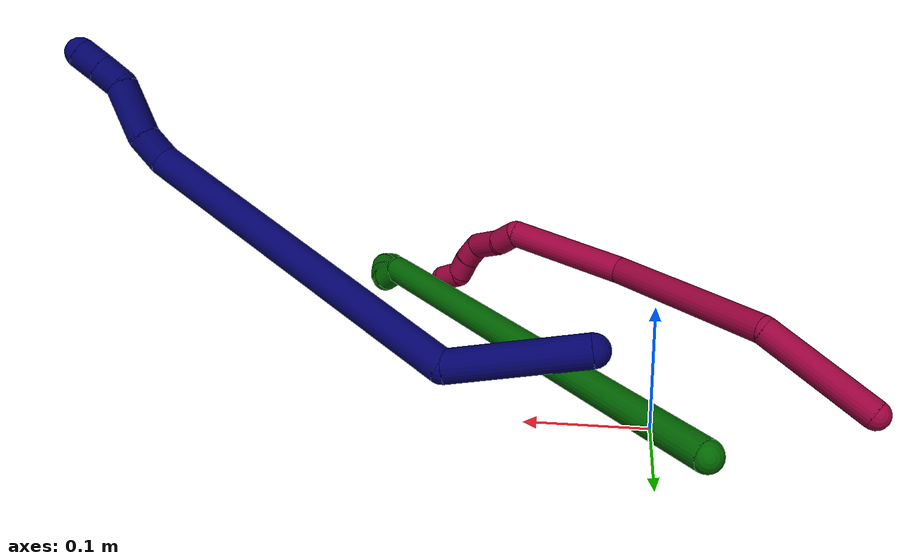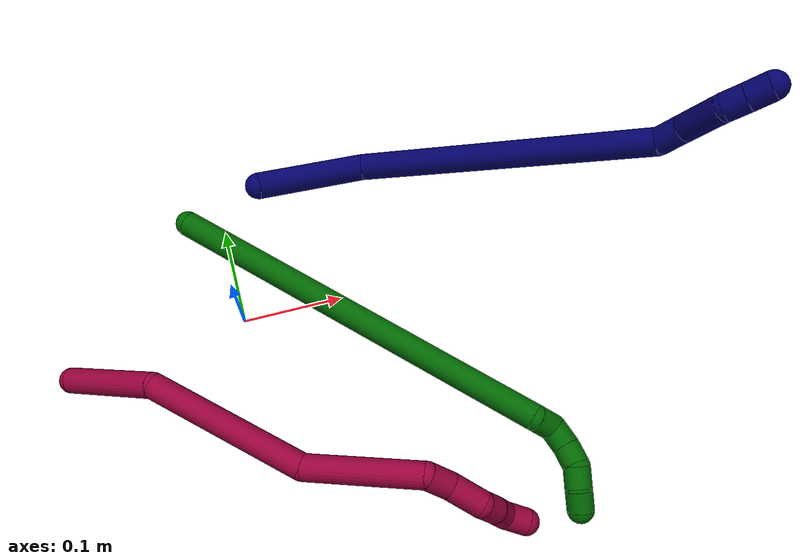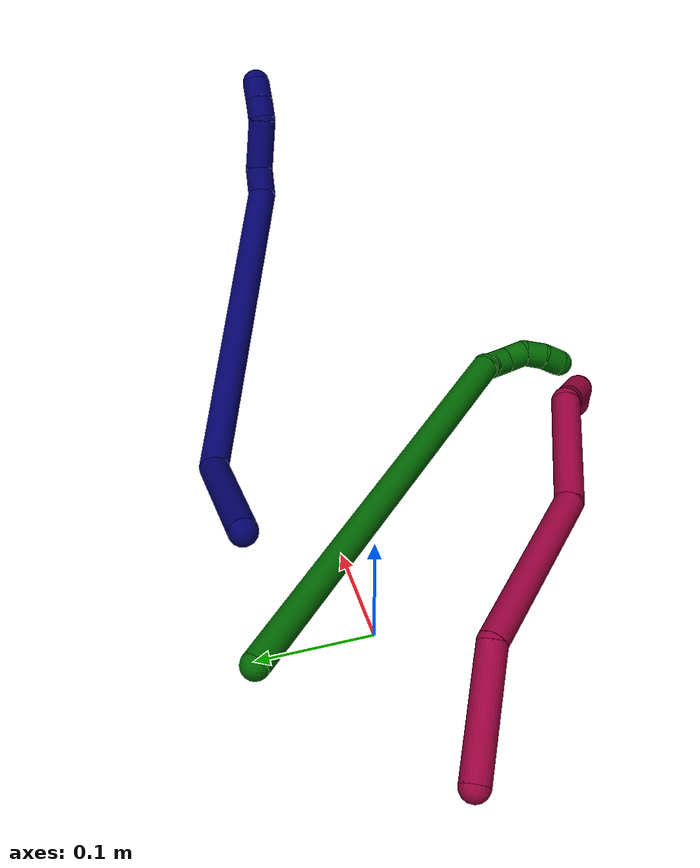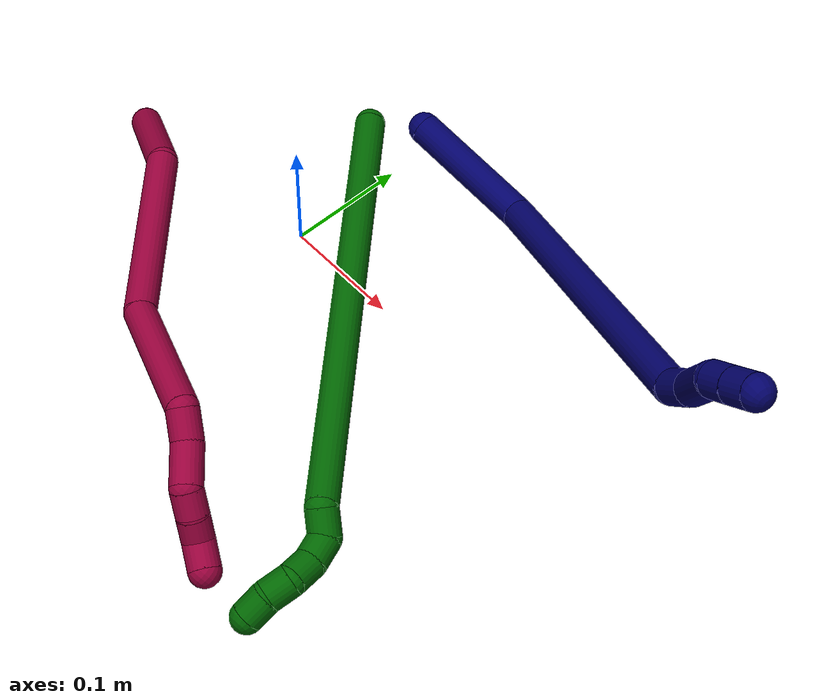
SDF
<sdf version="1.7">
 <world name="default">
  <model name="photoneo_s_sensor">
   <static>1</static>
   <pose>0 0 2 1.57079 1.57079 3.14159</pose>
   <link name="link">
    <inertial><mass>0.1</mass></inertial>
    <sensor name="sensor" type="depth">
     <update_rate>30</update_rate>
     <camera>
      <horizontal_fov>1.22</horizontal_fov>
      <image><width>1920</width><height>1200</height><format>B8G8R8</format></image>
      <clip><near>0.1</near><far>4</far></clip>
      <depth_camera><output>points</output></depth_camera>
     </camera>
     <plugin name="camera_plugin" filename="libgazebo_ros_depth_camera.so">
      <baseline>0.2</baseline>
      <alwaysOn>1</alwaysOn>
      <updateRate>0.0</updateRate>
      <cameraName>camera_ir</cameraName>
      <imageTopicName>/camera/color/image_raw</imageTopicName>
      <cameraInfoTopicName>/camera/color/camera_info</cameraInfoTopicName>
      <depthImageTopicName>/camera/depth/image_raw</depthImageTopicName>
      <depthImageCameraInfoTopicName>/camera/depth/camera_info</depthImageCameraInfoTopicName>
      <pointCloudTopicName>/camera/depth/points</pointCloudTopicName>
      <frameName>fr_optical</frameName>
      <pointCloudCutoff>0.1</pointCloudCutoff>
      <pointCloudCutoffMax>2.0</pointCloudCutoffMax>
      <distortionK1>0</distortionK1>
      <distortionK2>0</distortionK2>
      <distortionK3>0</distortionK3>
      <distortionT1>0</distortionT1>
      <distortionT2>0</distortionT2>
      <CxPrime>0</CxPrime>
      <Cx>0</Cx>
      <Cy>0</Cy>
      <focalLength>0</focalLength>
      <hackBaseline>0</hackBaseline>
     </plugin>
    </sensor>
   </link>
  </model>
  <model name="bin">
   <static>1</static>
   <link name="bottom">
    <collision name="collision-bottom">
     <pose>0 0 -0.01 0 -0 0</pose>
     <geometry><box><size>0.8 0.6 0.02</size></box></geometry>
     <surface>
      <friction><ode><mu>100</mu><mu2>100</mu2></ode></friction>
      <contact><collide_bitmask>65535</collide_bitmask></contact>
     </surface>
    </collision>
   </link>
   <link name="west_wall">
    <collision name="collision-west_wall">
     <pose>-0.41 0 0.1 0 -0 0</pose>
     <geometry><box><size>0.02 0.6 0.2</size></box></geometry>
     <surface>
      <friction><ode><mu>100</mu><mu2>100</mu2></ode></friction>
      <contact><collide_bitmask>65535</collide_bitmask></contact>
     </surface>
    </collision>
   </link>
   <link name="east_wall">
    <collision name="collision-east_wall">
     <pose>0.41 0 0.1 0 -0 0</pose>
     <geometry><box><size>0.02 0.6 0.2</size></box></geometry>
     <surface>
      <friction><ode><mu>100</mu><mu2>100</mu2></ode></friction>
      <contact><collide_bitmask>65535</collide_bitmask></contact>
     </surface>
    </collision>
   </link>
   <link name="south_wall">
    <collision name="collision-south_wall">
     <pose>0 -0.31 0.1 0 -0 0</pose>
     <geometry><box><size>0.8 0.02 0.2</size></box></geometry>
     <surface>
      <friction><ode><mu>100</mu><mu2>100</mu2></ode></friction>
      <contact><collide_bitmask>65535</collide_bitmask></contact>
     </surface>
    </collision>
   </link>
   <link name="north_wall">
    <collision name="collision-north_wall">
     <pose>0 0.31 0.1 0 -0 0</pose>
     <geometry><box><size>0.8 0.02 0.2</size></box></geometry>
     <surface>
      <friction><ode><mu>100</mu><mu2>100</mu2></ode></friction>
      <contact><collide_bitmask>65535</collide_bitmask></contact>
     </surface>
    </collision>
   </link>
  </model>
  <model name="6">
   <static>0</static>
   <link name="6">
    <collision name="collision-cylinder-e_1_1_4">
     <pose>0.103603 -0.096543 0.139292 0.606078 0.548691 0.175544</pose>
     <geometry><cylinder><radius>0.0125</radius><length>0.397273</length></cylinder></geometry>
     <surface>
      <friction><ode><mu>1.16</mu><mu2>1.16</mu2><slip1>0</slip1><slip2>0</slip2></ode></friction>
      <contact><ode><kp>1e+06</kp><kd>1</kd><max_vel>0</max_vel><min_depth>0.001</min_depth></ode></contact>
     </surface>
    </collision>
    <visual name="visual-cylinder-e_1_1_4">
     <pose>0.103603 -0.096543 0.139292 0.606078 0.548691 0.175544</pose>
     <geometry><cylinder><radius>0.0125</radius><length>0.397273</length></cylinder></geometry>
     <material><ambient>0 0.392157 0.003922 1</ambient></material>
    </visual>
    <collision name="collision-cylinder-e_2_4_5">
     <pose>0.205924 -0.201027 0.285839 0.830552 -0.118692 -0.052383</pose>
     <geometry><cylinder><radius>0.0125</radius><length>0.021665</length></cylinder></geometry>
     <surface>
      <friction><ode><mu>1.16</mu><mu2>1.16</mu2><slip1>0</slip1><slip2>0</slip2></ode></friction>
      <contact><ode><kp>1e+06</kp><kd>1</kd><max_vel>0</max_vel><min_depth>0.001</min_depth></ode></contact>
     </surface>
    </collision>
    <visual name="visual-cylinder-e_2_4_5">
     <pose>0.205924 -0.201027 0.285839 0.830552 -0.118692 -0.052383</pose>
     <geometry><cylinder><radius>0.0125</radius><length>0.021665</length></cylinder></geometry>
     <material><ambient>0 0.392157 0.003922 1</ambient></material>
    </visual>
    <collision name="collision-cylinder-e_3_5_6">
     <pose>0.207876 -0.210766 0.302839 0.18241 0.315588 0.029103</pose>
     <geometry><cylinder><radius>0.0125</radius><length>0.020849</length></cylinder></geometry>
     <surface>
      <friction><ode><mu>1.16</mu><mu2>1.16</mu2><slip1>0</slip1><slip2>0</slip2></ode></friction>
      <contact><ode><kp>1e+06</kp><kd>1</kd><max_vel>0</max_vel><min_depth>0.001</min_depth></ode></contact>
     </surface>
    </collision>
    <visual name="visual-cylinder-e_3_5_6">
     <pose>0.207876 -0.210766 0.302839 0.18241 0.315588 0.029103</pose>
     <geometry><cylinder><radius>0.0125</radius><length>0.020849</length></cylinder></geometry>
     <material><ambient>0 0.392157 0.003922 1</ambient></material>
    </visual>
    <collision name="collision-cylinder-e_4_6_7">
     <pose>0.215576 -0.211732 0.321575 -0.092287 0.45924 -0.021586</pose>
     <geometry><cylinder><radius>0.0125</radius><length>0.020143</length></cylinder></geometry>
     <surface>
      <friction><ode><mu>1.16</mu><mu2>1.16</mu2><slip1>0</slip1><slip2>0</slip2></ode></friction>
      <contact><ode><kp>1e+06</kp><kd>1</kd><max_vel>0</max_vel><min_depth>0.001</min_depth></ode></contact>
     </surface>
    </collision>
    <visual name="visual-cylinder-e_4_6_7">
     <pose>0.215576 -0.211732 0.321575 -0.092287 0.45924 -0.021586</pose>
     <geometry><cylinder><radius>0.0125</radius><length>0.020143</length></cylinder></geometry>
     <material><ambient>0 0.392157 0.003922 1</ambient></material>
    </visual>
    <collision name="collision-cylinder-e_5_7_8">
     <pose>0.219775 -0.208428 0.340266 -0.249542 -0.026585 0.003335</pose>
     <geometry><cylinder><radius>0.0125</radius><length>0.02003</length></cylinder></geometry>
     <surface>
      <friction><ode><mu>1.16</mu><mu2>1.16</mu2><slip1>0</slip1><slip2>0</slip2></ode></friction>
      <contact><ode><kp>1e+06</kp><kd>1</kd><max_vel>0</max_vel><min_depth>0.001</min_depth></ode></contact>
     </surface>
    </collision>
    <visual name="visual-cylinder-e_5_7_8">
     <pose>0.219775 -0.208428 0.340266 -0.249542 -0.026585 0.003335</pose>
     <geometry><cylinder><radius>0.0125</radius><length>0.02003</length></cylinder></geometry>
     <material><ambient>0 0.392157 0.003922 1</ambient></material>
    </visual>
    <collision name="collision-cylinder-e_6_8_2">
     <pose>0.216968 -0.205199 0.35963 -0.078041 -0.256379 0.010064</pose>
     <geometry><cylinder><radius>0.0125</radius><length>0.020039</length></cylinder></geometry>
     <surface>
      <friction><ode><mu>1.16</mu><mu2>1.16</mu2><slip1>0</slip1><slip2>0</slip2></ode></friction>
      <contact><ode><kp>1e+06</kp><kd>1</kd><max_vel>0</max_vel><min_depth>0.001</min_depth></ode></contact>
     </surface>
    </collision>
    <visual name="visual-cylinder-e_6_8_2">
     <pose>0.216968 -0.205199 0.35963 -0.078041 -0.256379 0.010064</pose>
     <geometry><cylinder><radius>0.0125</radius><length>0.020039</length></cylinder></geometry>
     <material><ambient>0 0.392157 0.003922 1</ambient></material>
    </visual>
    <collision name="collision-sphere-2">
     <pose>0.214427 -0.204444 0.369292 0 -0 0</pose>
     <geometry><sphere><radius>0.0125</radius></sphere></geometry>
     <surface>
      <friction><ode><mu>1.16</mu><mu2>1.16</mu2><slip1>0</slip1><slip2>0</slip2></ode></friction>
      <contact><ode><kp>1e+06</kp><kd>1</kd><max_vel>0</max_vel><min_depth>0.001</min_depth></ode></contact>
     </surface>
    </collision>
    <visual name="visual-sphere-2">
     <pose>0.214427 -0.204444 0.369292 0 -0 0</pose>
     <geometry><sphere><radius>0.0125</radius></sphere></geometry>
     <material><ambient>0 0.392157 0.003922 1</ambient></material>
    </visual>
    <collision name="collision-sphere-4">
     <pose>0.207206 -0.193086 0.278585 0 -0 0</pose>
     <geometry><sphere><radius>0.0125</radius></sphere></geometry>
     <surface>
      <friction><ode><mu>1.16</mu><mu2>1.16</mu2><slip1>0</slip1><slip2>0</slip2></ode></friction>
      <contact><ode><kp>1e+06</kp><kd>1</kd><max_vel>0</max_vel><min_depth>0.001</min_depth></ode></contact>
     </surface>
    </collision>
    <visual name="visual-sphere-4">
     <pose>0.207206 -0.193086 0.278585 0 -0 0</pose>
     <geometry><sphere><radius>0.0125</radius></sphere></geometry>
     <material><ambient>0 0.392157 0.003922 1</ambient></material>
    </visual>
    <collision name="collision-sphere-1">
     <geometry><sphere><radius>0.0125</radius></sphere></geometry>
     <surface>
      <friction><ode><mu>1.16</mu><mu2>1.16</mu2><slip1>0</slip1><slip2>0</slip2></ode></friction>
      <contact><ode><kp>1e+06</kp><kd>1</kd><max_vel>0</max_vel><min_depth>0.001</min_depth></ode></contact>
     </surface>
    </collision>
    <visual name="visual-sphere-1">
     <geometry><sphere><radius>0.0125</radius></sphere></geometry>
     <material><ambient>0 0.392157 0.003922 1</ambient></material>
    </visual>
    <collision name="collision-sphere-8">
     <pose>0.219508 -0.205955 0.349967 0 -0 0</pose>
     <geometry><sphere><radius>0.0125</radius></sphere></geometry>
     <surface>
      <friction><ode><mu>1.16</mu><mu2>1.16</mu2><slip1>0</slip1><slip2>0</slip2></ode></friction>
      <contact><ode><kp>1e+06</kp><kd>1</kd><max_vel>0</max_vel><min_depth>0.001</min_depth></ode></contact>
     </surface>
    </collision>
    <visual name="visual-sphere-8">
     <pose>0.219508 -0.205955 0.349967 0 -0 0</pose>
     <geometry><sphere><radius>0.0125</radius></sphere></geometry>
     <material><ambient>0 0.392157 0.003922 1</ambient></material>
    </visual>
    <collision name="collision-sphere-5">
     <pose>0.204641 -0.208969 0.293094 0 -0 0</pose>
     <geometry><sphere><radius>0.0125</radius></sphere></geometry>
     <surface>
      <friction><ode><mu>1.16</mu><mu2>1.16</mu2><slip1>0</slip1><slip2>0</slip2></ode></friction>
      <contact><ode><kp>1e+06</kp><kd>1</kd><max_vel>0</max_vel><min_depth>0.001</min_depth></ode></contact>
     </surface>
    </collision>
    <visual name="visual-sphere-5">
     <pose>0.204641 -0.208969 0.293094 0 -0 0</pose>
     <geometry><sphere><radius>0.0125</radius></sphere></geometry>
     <material><ambient>0 0.392157 0.003922 1</ambient></material>
    </visual>
    <collision name="collision-sphere-6">
     <pose>0.211112 -0.212564 0.312585 0 -0 0</pose>
     <geometry><sphere><radius>0.0125</radius></sphere></geometry>
     <surface>
      <friction><ode><mu>1.16</mu><mu2>1.16</mu2><slip1>0</slip1><slip2>0</slip2></ode></friction>
      <contact><ode><kp>1e+06</kp><kd>1</kd><max_vel>0</max_vel><min_depth>0.001</min_depth></ode></contact>
     </surface>
    </collision>
    <visual name="visual-sphere-6">
     <pose>0.211112 -0.212564 0.312585 0 -0 0</pose>
     <geometry><sphere><radius>0.0125</radius></sphere></geometry>
     <material><ambient>0 0.392157 0.003922 1</ambient></material>
    </visual>
    <collision name="collision-sphere-7">
     <pose>0.220041 -0.2109 0.330564 0 -0 0</pose>
     <geometry><sphere><radius>0.0125</radius></sphere></geometry>
     <surface>
      <friction><ode><mu>1.16</mu><mu2>1.16</mu2><slip1>0</slip1><slip2>0</slip2></ode></friction>
      <contact><ode><kp>1e+06</kp><kd>1</kd><max_vel>0</max_vel><min_depth>0.001</min_depth></ode></contact>
     </surface>
    </collision>
    <visual name="visual-sphere-7">
     <pose>0.220041 -0.2109 0.330564 0 -0 0</pose>
     <geometry><sphere><radius>0.0125</radius></sphere></geometry>
     <material><ambient>0 0.392157 0.003922 1</ambient></material>
    </visual>
    <inertial>
     <pose>0.126093 -0.119311 0.176687 0 -0 0</pose>
     <mass>0.5</mass>
     <inertia>
      <ixx>0.005207</ixx>
      <ixy>0</ixy>
      <ixz>0</ixz>
      <iyy>0.005285</iyy>
      <iyz>0</iyz>
      <izz>-0.000157</izz>
     </inertia>
    </inertial>
   </link>
   <pose>-0.032825 0.105259 0.031911 2.37846 -1.10918 -0.677895</pose>
  </model>
  <model name="7">
   <static>0</static>
   <link name="7">
    <collision name="collision-cylinder-e_1_1_4">
     <pose>-0.016769 -0.007996 0.048613 0.163016 -0.328074 -0.027041</pose>
     <geometry><cylinder><radius>0.0125</radius><length>0.104084</length></cylinder></geometry>
     <surface>
      <friction><ode><mu>1.16</mu><mu2>1.16</mu2><slip1>0</slip1><slip2>0</slip2></ode></friction>
      <contact><ode><kp>1e+06</kp><kd>1</kd><max_vel>0</max_vel><min_depth>0.001</min_depth></ode></contact>
     </surface>
    </collision>
    <visual name="visual-cylinder-e_1_1_4">
     <pose>-0.016769 -0.007996 0.048613 0.163016 -0.328074 -0.027041</pose>
     <geometry><cylinder><radius>0.0125</radius><length>0.104084</length></cylinder></geometry>
     <material><ambient>0.003922 0 0.403922 1</ambient></material>
    </visual>
    <collision name="collision-cylinder-e_2_4_5">
     <pose>0.013884 0.001394 0.230882 -0.12935 0.338313 -0.022122</pose>
     <geometry><cylinder><radius>0.0125</radius><length>0.285762</length></cylinder></geometry>
     <surface>
      <friction><ode><mu>1.16</mu><mu2>1.16</mu2><slip1>0</slip1><slip2>0</slip2></ode></friction>
      <contact><ode><kp>1e+06</kp><kd>1</kd><max_vel>0</max_vel><min_depth>0.001</min_depth></ode></contact>
     </surface>
    </collision>
    <visual name="visual-cylinder-e_2_4_5">
     <pose>0.013884 0.001394 0.230882 -0.12935 0.338313 -0.022122</pose>
     <geometry><cylinder><radius>0.0125</radius><length>0.285762</length></cylinder></geometry>
     <material><ambient>0.003922 0 0.403922 1</ambient></material>
    </visual>
    <collision name="collision-cylinder-e_3_5_6">
     <pose>0.068932 0.016487 0.374034 0.236936 0.662857 0.081873</pose>
     <geometry><cylinder><radius>0.0125</radius><length>0.024788</length></cylinder></geometry>
     <surface>
      <friction><ode><mu>1.16</mu><mu2>1.16</mu2><slip1>0</slip1><slip2>0</slip2></ode></friction>
      <contact><ode><kp>1e+06</kp><kd>1</kd><max_vel>0</max_vel><min_depth>0.001</min_depth></ode></contact>
     </surface>
    </collision>
    <visual name="visual-cylinder-e_3_5_6">
     <pose>0.068932 0.016487 0.374034 0.236936 0.662857 0.081873</pose>
     <geometry><cylinder><radius>0.0125</radius><length>0.024788</length></cylinder></geometry>
     <material><ambient>0.003922 0 0.403922 1</ambient></material>
    </visual>
    <collision name="collision-cylinder-e_4_6_7">
     <pose>0.094654 0.012777 0.396506 0.1087 0.945898 0.05566</pose>
     <geometry><cylinder><radius>0.0125</radius><length>0.044622</length></cylinder></geometry>
     <surface>
      <friction><ode><mu>1.16</mu><mu2>1.16</mu2><slip1>0</slip1><slip2>0</slip2></ode></friction>
      <contact><ode><kp>1e+06</kp><kd>1</kd><max_vel>0</max_vel><min_depth>0.001</min_depth></ode></contact>
     </surface>
    </collision>
    <visual name="visual-cylinder-e_4_6_7">
     <pose>0.094654 0.012777 0.396506 0.1087 0.945898 0.05566</pose>
     <geometry><cylinder><radius>0.0125</radius><length>0.044622</length></cylinder></geometry>
     <material><ambient>0.003922 0 0.403922 1</ambient></material>
    </visual>
    <collision name="collision-cylinder-e_5_7_8">
     <pose>0.117389 0.009595 0.418295 0.197842 0.476518 0.048198</pose>
     <geometry><cylinder><radius>0.0125</radius><length>0.020232</length></cylinder></geometry>
     <surface>
      <friction><ode><mu>1.16</mu><mu2>1.16</mu2><slip1>0</slip1><slip2>0</slip2></ode></friction>
      <contact><ode><kp>1e+06</kp><kd>1</kd><max_vel>0</max_vel><min_depth>0.001</min_depth></ode></contact>
     </surface>
    </collision>
    <visual name="visual-cylinder-e_5_7_8">
     <pose>0.117389 0.009595 0.418295 0.197842 0.476518 0.048198</pose>
     <geometry><cylinder><radius>0.0125</radius><length>0.020232</length></cylinder></geometry>
     <material><ambient>0.003922 0 0.403922 1</ambient></material>
    </visual>
    <collision name="collision-cylinder-e_6_8_2">
     <pose>0.12655 0.005776 0.436083 0.224774 0.456563 0.052431</pose>
     <geometry><cylinder><radius>0.0125</radius><length>0.020512</length></cylinder></geometry>
     <surface>
      <friction><ode><mu>1.16</mu><mu2>1.16</mu2><slip1>0</slip1><slip2>0</slip2></ode></friction>
      <contact><ode><kp>1e+06</kp><kd>1</kd><max_vel>0</max_vel><min_depth>0.001</min_depth></ode></contact>
     </surface>
    </collision>
    <visual name="visual-cylinder-e_6_8_2">
     <pose>0.12655 0.005776 0.436083 0.224774 0.456563 0.052431</pose>
     <geometry><cylinder><radius>0.0125</radius><length>0.020512</length></cylinder></geometry>
     <material><ambient>0.003922 0 0.403922 1</ambient></material>
    </visual>
    <collision name="collision-sphere-2">
     <pose>0.131072 0.003724 0.445057 0 -0 0</pose>
     <geometry><sphere><radius>0.0125</radius></sphere></geometry>
     <surface>
      <friction><ode><mu>1.16</mu><mu2>1.16</mu2><slip1>0</slip1><slip2>0</slip2></ode></friction>
      <contact><ode><kp>1e+06</kp><kd>1</kd><max_vel>0</max_vel><min_depth>0.001</min_depth></ode></contact>
     </surface>
    </collision>
    <visual name="visual-sphere-2">
     <pose>0.131072 0.003724 0.445057 0 -0 0</pose>
     <geometry><sphere><radius>0.0125</radius></sphere></geometry>
     <material><ambient>0.003922 0 0.403922 1</ambient></material>
    </visual>
    <collision name="collision-sphere-4">
     <pose>-0.033538 -0.015991 0.097226 0 -0 0</pose>
     <geometry><sphere><radius>0.0125</radius></sphere></geometry>
     <surface>
      <friction><ode><mu>1.16</mu><mu2>1.16</mu2><slip1>0</slip1><slip2>0</slip2></ode></friction>
      <contact><ode><kp>1e+06</kp><kd>1</kd><max_vel>0</max_vel><min_depth>0.001</min_depth></ode></contact>
     </surface>
    </collision>
    <visual name="visual-sphere-4">
     <pose>-0.033538 -0.015991 0.097226 0 -0 0</pose>
     <geometry><sphere><radius>0.0125</radius></sphere></geometry>
     <material><ambient>0.003922 0 0.403922 1</ambient></material>
    </visual>
    <collision name="collision-sphere-1">
     <geometry><sphere><radius>0.0125</radius></sphere></geometry>
     <surface>
      <friction><ode><mu>1.16</mu><mu2>1.16</mu2><slip1>0</slip1><slip2>0</slip2></ode></friction>
      <contact><ode><kp>1e+06</kp><kd>1</kd><max_vel>0</max_vel><min_depth>0.001</min_depth></ode></contact>
     </surface>
    </collision>
    <visual name="visual-sphere-1">
     <geometry><sphere><radius>0.0125</radius></sphere></geometry>
     <material><ambient>0.003922 0 0.403922 1</ambient></material>
    </visual>
    <collision name="collision-sphere-8">
     <pose>0.122029 0.007828 0.427109 0 -0 0</pose>
     <geometry><sphere><radius>0.0125</radius></sphere></geometry>
     <surface>
      <friction><ode><mu>1.16</mu><mu2>1.16</mu2><slip1>0</slip1><slip2>0</slip2></ode></friction>
      <contact><ode><kp>1e+06</kp><kd>1</kd><max_vel>0</max_vel><min_depth>0.001</min_depth></ode></contact>
     </surface>
    </collision>
    <visual name="visual-sphere-8">
     <pose>0.122029 0.007828 0.427109 0 -0 0</pose>
     <geometry><sphere><radius>0.0125</radius></sphere></geometry>
     <material><ambient>0.003922 0 0.403922 1</ambient></material>
    </visual>
    <collision name="collision-sphere-5">
     <pose>0.061305 0.01878 0.364538 0 -0 0</pose>
     <geometry><sphere><radius>0.0125</radius></sphere></geometry>
     <surface>
      <friction><ode><mu>1.16</mu><mu2>1.16</mu2><slip1>0</slip1><slip2>0</slip2></ode></friction>
      <contact><ode><kp>1e+06</kp><kd>1</kd><max_vel>0</max_vel><min_depth>0.001</min_depth></ode></contact>
     </surface>
    </collision>
    <visual name="visual-sphere-5">
     <pose>0.061305 0.01878 0.364538 0 -0 0</pose>
     <geometry><sphere><radius>0.0125</radius></sphere></geometry>
     <material><ambient>0.003922 0 0.403922 1</ambient></material>
    </visual>
    <collision name="collision-sphere-6">
     <pose>0.076559 0.014193 0.383531 0 -0 0</pose>
     <geometry><sphere><radius>0.0125</radius></sphere></geometry>
     <surface>
      <friction><ode><mu>1.16</mu><mu2>1.16</mu2><slip1>0</slip1><slip2>0</slip2></ode></friction>
      <contact><ode><kp>1e+06</kp><kd>1</kd><max_vel>0</max_vel><min_depth>0.001</min_depth></ode></contact>
     </surface>
    </collision>
    <visual name="visual-sphere-6">
     <pose>0.076559 0.014193 0.383531 0 -0 0</pose>
     <geometry><sphere><radius>0.0125</radius></sphere></geometry>
     <material><ambient>0.003922 0 0.403922 1</ambient></material>
    </visual>
    <collision name="collision-sphere-7">
     <pose>0.112748 0.011361 0.409481 0 -0 0</pose>
     <geometry><sphere><radius>0.0125</radius></sphere></geometry>
     <surface>
      <friction><ode><mu>1.16</mu><mu2>1.16</mu2><slip1>0</slip1><slip2>0</slip2></ode></friction>
      <contact><ode><kp>1e+06</kp><kd>1</kd><max_vel>0</max_vel><min_depth>0.001</min_depth></ode></contact>
     </surface>
    </collision>
    <visual name="visual-sphere-7">
     <pose>0.112748 0.011361 0.409481 0 -0 0</pose>
     <geometry><sphere><radius>0.0125</radius></sphere></geometry>
     <material><ambient>0.003922 0 0.403922 1</ambient></material>
    </visual>
    <inertial>
     <pose>0.02625 0.001715 0.230819 0 -0 0</pose>
     <mass>0.5</mass>
     <inertia>
      <ixx>0.001914</ixx>
      <ixy>0</ixy>
      <ixz>0</ixz>
      <iyy>0.002009</iyy>
      <iyz>0</iyz>
      <izz>-0.000814</izz>
     </inertia>
    </inertial>
   </link>
   <pose>0.045082 0.093822 0.098817 -1.01731 -1.31084 -2.30272</pose>
  </model>
  <model name="8">
   <static>0</static>
   <link name="8">
    <collision name="collision-cylinder-e_1_1_4">
     <pose>0.052507 -0.000786 0.007804 0.100392 1.42252 0.086529</pose>
     <geometry><cylinder><radius>0.0125</radius><length>0.106179</length></cylinder></geometry>
     <surface>
      <friction><ode><mu>1.16</mu><mu2>1.16</mu2><slip1>0</slip1><slip2>0</slip2></ode></friction>
      <contact><ode><kp>1e+06</kp><kd>1</kd><max_vel>0</max_vel><min_depth>0.001</min_depth></ode></contact>
     </surface>
    </collision>
    <visual name="visual-cylinder-e_1_1_4">
     <pose>0.052507 -0.000786 0.007804 0.100392 1.42252 0.086529</pose>
     <geometry><cylinder><radius>0.0125</radius><length>0.106179</length></cylinder></geometry>
     <material><ambient>0.584314 0 0.227451 1</ambient></material>
    </visual>
    <collision name="collision-cylinder-e_2_4_5">
     <pose>0.169476 -0.012844 0.06329 0.232132 0.920873 0.115527</pose>
     <geometry><cylinder><radius>0.0125</radius><length>0.161939</length></cylinder></geometry>
     <surface>
      <friction><ode><mu>1.16</mu><mu2>1.16</mu2><slip1>0</slip1><slip2>0</slip2></ode></friction>
      <contact><ode><kp>1e+06</kp><kd>1</kd><max_vel>0</max_vel><min_depth>0.001</min_depth></ode></contact>
     </surface>
    </collision>
    <visual name="visual-cylinder-e_2_4_5">
     <pose>0.169476 -0.012844 0.06329 0.232132 0.920873 0.115527</pose>
     <geometry><cylinder><radius>0.0125</radius><length>0.161939</length></cylinder></geometry>
     <material><ambient>0.584314 0 0.227451 1</ambient></material>
    </visual>
    <collision name="collision-cylinder-e_3_5_6">
     <pose>0.284876 -0.041374 0.12414 0.919035 1.16794 0.632124</pose>
     <geometry><cylinder><radius>0.0125</radius><length>0.110739</length></cylinder></geometry>
     <surface>
      <friction><ode><mu>1.16</mu><mu2>1.16</mu2><slip1>0</slip1><slip2>0</slip2></ode></friction>
      <contact><ode><kp>1e+06</kp><kd>1</kd><max_vel>0</max_vel><min_depth>0.001</min_depth></ode></contact>
     </surface>
    </collision>
    <visual name="visual-cylinder-e_3_5_6">
     <pose>0.284876 -0.041374 0.12414 0.919035 1.16794 0.632124</pose>
     <geometry><cylinder><radius>0.0125</radius><length>0.110739</length></cylinder></geometry>
     <material><ambient>0.584314 0 0.227451 1</ambient></material>
    </visual>
    <collision name="collision-cylinder-e_4_6_7">
     <pose>0.340789 -0.066487 0.145396 0.77082 0.415618 0.17067</pose>
     <geometry><cylinder><radius>0.0125</radius><length>0.024648</length></cylinder></geometry>
     <surface>
      <friction><ode><mu>1.16</mu><mu2>1.16</mu2><slip1>0</slip1><slip2>0</slip2></ode></friction>
      <contact><ode><kp>1e+06</kp><kd>1</kd><max_vel>0</max_vel><min_depth>0.001</min_depth></ode></contact>
     </surface>
    </collision>
    <visual name="visual-cylinder-e_4_6_7">
     <pose>0.340789 -0.066487 0.145396 0.77082 0.415618 0.17067</pose>
     <geometry><cylinder><radius>0.0125</radius><length>0.024648</length></cylinder></geometry>
     <material><ambient>0.584314 0 0.227451 1</ambient></material>
    </visual>
    <collision name="collision-cylinder-e_5_7_8">
     <pose>0.355037 -0.081233 0.165395 0.524477 0.592908 0.163614</pose>
     <geometry><cylinder><radius>0.0125</radius><length>0.033186</length></cylinder></geometry>
     <surface>
      <friction><ode><mu>1.16</mu><mu2>1.16</mu2><slip1>0</slip1><slip2>0</slip2></ode></friction>
      <contact><ode><kp>1e+06</kp><kd>1</kd><max_vel>0</max_vel><min_depth>0.001</min_depth></ode></contact>
     </surface>
    </collision>
    <visual name="visual-cylinder-e_5_7_8">
     <pose>0.355037 -0.081233 0.165395 0.524477 0.592908 0.163614</pose>
     <geometry><cylinder><radius>0.0125</radius><length>0.033186</length></cylinder></geometry>
     <material><ambient>0.584314 0 0.227451 1</ambient></material>
    </visual>
    <collision name="collision-cylinder-e_6_8_9">
     <pose>0.365126 -0.096155 0.183472 0.915999 0.080582 0.03974</pose>
     <geometry><cylinder><radius>0.0125</radius><length>0.020316</length></cylinder></geometry>
     <surface>
      <friction><ode><mu>1.16</mu><mu2>1.16</mu2><slip1>0</slip1><slip2>0</slip2></ode></friction>
      <contact><ode><kp>1e+06</kp><kd>1</kd><max_vel>0</max_vel><min_depth>0.001</min_depth></ode></contact>
     </surface>
    </collision>
    <visual name="visual-cylinder-e_6_8_9">
     <pose>0.365126 -0.096155 0.183472 0.915999 0.080582 0.03974</pose>
     <geometry><cylinder><radius>0.0125</radius><length>0.020316</length></cylinder></geometry>
     <material><ambient>0.584314 0 0.227451 1</ambient></material>
    </visual>
    <collision name="collision-cylinder-e_7_9_10">
     <pose>0.364863 -0.112463 0.19568 0.940277 -0.105071 -0.053427</pose>
     <geometry><cylinder><radius>0.0125</radius><length>0.02061</length></cylinder></geometry>
     <surface>
      <friction><ode><mu>1.16</mu><mu2>1.16</mu2><slip1>0</slip1><slip2>0</slip2></ode></friction>
      <contact><ode><kp>1e+06</kp><kd>1</kd><max_vel>0</max_vel><min_depth>0.001</min_depth></ode></contact>
     </surface>
    </collision>
    <visual name="visual-cylinder-e_7_9_10">
     <pose>0.364863 -0.112463 0.19568 0.940277 -0.105071 -0.053427</pose>
     <geometry><cylinder><radius>0.0125</radius><length>0.02061</length></cylinder></geometry>
     <material><ambient>0.584314 0 0.227451 1</ambient></material>
    </visual>
    <collision name="collision-cylinder-e_8_10_2">
     <pose>0.370023 -0.127425 0.208173 0.803099 0.591521 0.257332</pose>
     <geometry><cylinder><radius>0.0125</radius><length>0.022382</length></cylinder></geometry>
     <surface>
      <friction><ode><mu>1.16</mu><mu2>1.16</mu2><slip1>0</slip1><slip2>0</slip2></ode></friction>
      <contact><ode><kp>1e+06</kp><kd>1</kd><max_vel>0</max_vel><min_depth>0.001</min_depth></ode></contact>
     </surface>
    </collision>
    <visual name="visual-cylinder-e_8_10_2">
     <pose>0.370023 -0.127425 0.208173 0.803099 0.591521 0.257332</pose>
     <geometry><cylinder><radius>0.0125</radius><length>0.022382</length></cylinder></geometry>
     <material><ambient>0.584314 0 0.227451 1</ambient></material>
    </visual>
    <collision name="collision-sphere-2">
     <pose>0.376263 -0.134109 0.214625 0 -0 0</pose>
     <geometry><sphere><radius>0.0125</radius></sphere></geometry>
     <surface>
      <friction><ode><mu>1.16</mu><mu2>1.16</mu2><slip1>0</slip1><slip2>0</slip2></ode></friction>
      <contact><ode><kp>1e+06</kp><kd>1</kd><max_vel>0</max_vel><min_depth>0.001</min_depth></ode></contact>
     </surface>
    </collision>
    <visual name="visual-sphere-2">
     <pose>0.376263 -0.134109 0.214625 0 -0 0</pose>
     <geometry><sphere><radius>0.0125</radius></sphere></geometry>
     <material><ambient>0.584314 0 0.227451 1</ambient></material>
    </visual>
    <collision name="collision-sphere-10">
     <pose>0.363782 -0.120741 0.201722 0 -0 0</pose>
     <geometry><sphere><radius>0.0125</radius></sphere></geometry>
     <surface>
      <friction><ode><mu>1.16</mu><mu2>1.16</mu2><slip1>0</slip1><slip2>0</slip2></ode></friction>
      <contact><ode><kp>1e+06</kp><kd>1</kd><max_vel>0</max_vel><min_depth>0.001</min_depth></ode></contact>
     </surface>
    </collision>
    <visual name="visual-sphere-10">
     <pose>0.363782 -0.120741 0.201722 0 -0 0</pose>
     <geometry><sphere><radius>0.0125</radius></sphere></geometry>
     <material><ambient>0.584314 0 0.227451 1</ambient></material>
    </visual>
    <collision name="collision-sphere-9">
     <pose>0.365944 -0.104186 0.189638 0 -0 0</pose>
     <geometry><sphere><radius>0.0125</radius></sphere></geometry>
     <surface>
      <friction><ode><mu>1.16</mu><mu2>1.16</mu2><slip1>0</slip1><slip2>0</slip2></ode></friction>
      <contact><ode><kp>1e+06</kp><kd>1</kd><max_vel>0</max_vel><min_depth>0.001</min_depth></ode></contact>
     </surface>
    </collision>
    <visual name="visual-sphere-9">
     <pose>0.365944 -0.104186 0.189638 0 -0 0</pose>
     <geometry><sphere><radius>0.0125</radius></sphere></geometry>
     <material><ambient>0.584314 0 0.227451 1</ambient></material>
    </visual>
    <collision name="collision-sphere-4">
     <pose>0.105014 -0.001572 0.015608 0 -0 0</pose>
     <geometry><sphere><radius>0.0125</radius></sphere></geometry>
     <surface>
      <friction><ode><mu>1.16</mu><mu2>1.16</mu2><slip1>0</slip1><slip2>0</slip2></ode></friction>
      <contact><ode><kp>1e+06</kp><kd>1</kd><max_vel>0</max_vel><min_depth>0.001</min_depth></ode></contact>
     </surface>
    </collision>
    <visual name="visual-sphere-4">
     <pose>0.105014 -0.001572 0.015608 0 -0 0</pose>
     <geometry><sphere><radius>0.0125</radius></sphere></geometry>
     <material><ambient>0.584314 0 0.227451 1</ambient></material>
    </visual>
    <collision name="collision-sphere-1">
     <geometry><sphere><radius>0.0125</radius></sphere></geometry>
     <surface>
      <friction><ode><mu>1.16</mu><mu2>1.16</mu2><slip1>0</slip1><slip2>0</slip2></ode></friction>
      <contact><ode><kp>1e+06</kp><kd>1</kd><max_vel>0</max_vel><min_depth>0.001</min_depth></ode></contact>
     </surface>
    </collision>
    <visual name="visual-sphere-1">
     <geometry><sphere><radius>0.0125</radius></sphere></geometry>
     <material><ambient>0.584314 0 0.227451 1</ambient></material>
    </visual>
    <collision name="collision-sphere-8">
     <pose>0.364308 -0.088124 0.177306 0 -0 0</pose>
     <geometry><sphere><radius>0.0125</radius></sphere></geometry>
     <surface>
      <friction><ode><mu>1.16</mu><mu2>1.16</mu2><slip1>0</slip1><slip2>0</slip2></ode></friction>
      <contact><ode><kp>1e+06</kp><kd>1</kd><max_vel>0</max_vel><min_depth>0.001</min_depth></ode></contact>
     </surface>
    </collision>
    <visual name="visual-sphere-8">
     <pose>0.364308 -0.088124 0.177306 0 -0 0</pose>
     <geometry><sphere><radius>0.0125</radius></sphere></geometry>
     <material><ambient>0.584314 0 0.227451 1</ambient></material>
    </visual>
    <collision name="collision-sphere-5">
     <pose>0.233939 -0.024116 0.110973 0 -0 0</pose>
     <geometry><sphere><radius>0.0125</radius></sphere></geometry>
     <surface>
      <friction><ode><mu>1.16</mu><mu2>1.16</mu2><slip1>0</slip1><slip2>0</slip2></ode></friction>
      <contact><ode><kp>1e+06</kp><kd>1</kd><max_vel>0</max_vel><min_depth>0.001</min_depth></ode></contact>
     </surface>
    </collision>
    <visual name="visual-sphere-5">
     <pose>0.233939 -0.024116 0.110973 0 -0 0</pose>
     <geometry><sphere><radius>0.0125</radius></sphere></geometry>
     <material><ambient>0.584314 0 0.227451 1</ambient></material>
    </visual>
    <collision name="collision-sphere-6">
     <pose>0.335813 -0.058631 0.137308 0 -0 0</pose>
     <geometry><sphere><radius>0.0125</radius></sphere></geometry>
     <surface>
      <friction><ode><mu>1.16</mu><mu2>1.16</mu2><slip1>0</slip1><slip2>0</slip2></ode></friction>
      <contact><ode><kp>1e+06</kp><kd>1</kd><max_vel>0</max_vel><min_depth>0.001</min_depth></ode></contact>
     </surface>
    </collision>
    <visual name="visual-sphere-6">
     <pose>0.335813 -0.058631 0.137308 0 -0 0</pose>
     <geometry><sphere><radius>0.0125</radius></sphere></geometry>
     <material><ambient>0.584314 0 0.227451 1</ambient></material>
    </visual>
    <collision name="collision-sphere-7">
     <pose>0.345765 -0.074342 0.153483 0 -0 0</pose>
     <geometry><sphere><radius>0.0125</radius></sphere></geometry>
     <surface>
      <friction><ode><mu>1.16</mu><mu2>1.16</mu2><slip1>0</slip1><slip2>0</slip2></ode></friction>
      <contact><ode><kp>1e+06</kp><kd>1</kd><max_vel>0</max_vel><min_depth>0.001</min_depth></ode></contact>
     </surface>
    </collision>
    <visual name="visual-sphere-7">
     <pose>0.345765 -0.074342 0.153483 0 -0 0</pose>
     <geometry><sphere><radius>0.0125</radius></sphere></geometry>
     <material><ambient>0.584314 0 0.227451 1</ambient></material>
    </visual>
    <inertial>
     <pose>0.215937 -0.036406 0.092634 0 -0 0</pose>
     <mass>0.5</mass>
     <inertia>
      <ixx>0.000363</ixx>
      <ixy>0</ixy>
      <ixz>0</ixz>
      <iyy>0.000621</iyy>
      <iyz>0</iyz>
      <izz>-0.00039</izz>
     </inertia>
    </inertial>
   </link>
   <pose>-0.173917 -0.022739 0.012499 2.17043 -0.606293 -0.338</pose>
  </model>
 </world>
</sdf>
